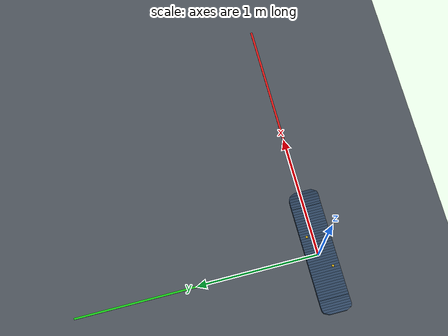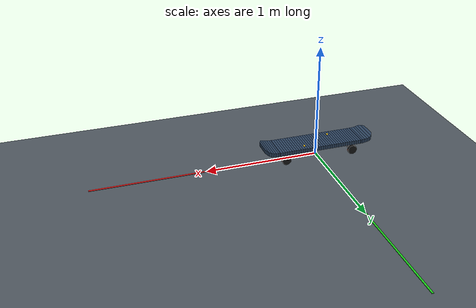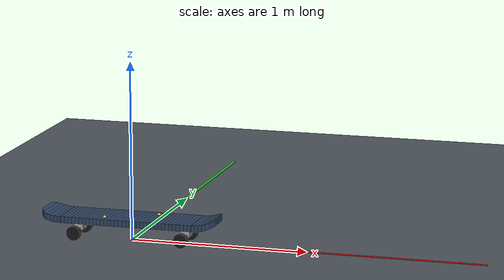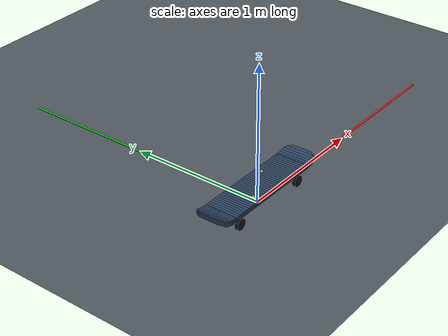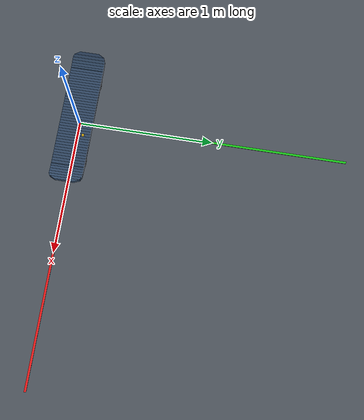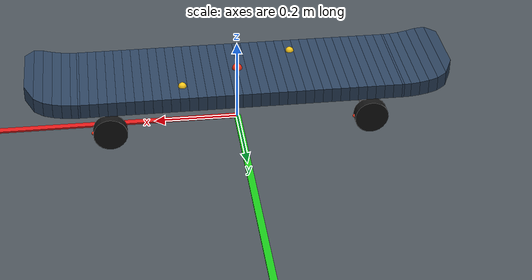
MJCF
<mujoco model="skate-sim-board-longboard-truck">
      <compiler angle="radian" coordinate="local"/>
      <option gravity="0 0 -9.81" integrator="implicitfast" timestep=".002"/>
      <visual><headlight diffuse=".8 .8 .8" ambient=".35 .35 .35"/></visual>
      <asset>
        <mesh name="deck_strip_0" vertex="-0.5 -0.0700000013 0.0105 -0.5 -0.0700000013 0.0455 -0.5 0.0700000013 0.0105 -0.5 0.0700000013 0.0455 -0.479166667 -0.110611643 0.00162172068 -0.479166667 -0.110611643 0.0366217207 -0.479166667 0.110611643 0.00162172068 -0.479166667 0.110611643 0.0366217207"/><mesh name="deck_strip_1" vertex="-0.479166667 -0.110611643 0.00162172068 -0.479166667 -0.110611643 0.0366217207 -0.479166667 0.110611643 0.00162172068 -0.479166667 0.110611643 0.0366217207 -0.458333333 -0.119300665 -0.00556867284 -0.458333333 -0.119300665 0.0294313272 -0.458333333 0.119300665 -0.00556867284 -0.458333333 0.119300665 0.0294313272"/><mesh name="deck_strip_2" vertex="-0.458333333 -0.119300665 -0.00556867284 -0.458333333 -0.119300665 0.0294313272 -0.458333333 0.119300665 -0.00556867284 -0.458333333 0.119300665 0.0294313272 -0.4375 -0.12 -0.0110711806 -0.4375 -0.12 0.0239288194 -0.4375 0.12 -0.0110711806 -0.4375 0.12 0.0239288194"/><mesh name="deck_strip_3" vertex="-0.4375 -0.12 -0.0110711806 -0.4375 -0.12 0.0239288194 -0.4375 0.12 -0.0110711806 -0.4375 0.12 0.0239288194 -0.416666667 -0.12 -0.0148858025 -0.416666667 -0.12 0.0201141975 -0.416666667 0.12 -0.0148858025 -0.416666667 0.12 0.0201141975"/><mesh name="deck_strip_4" vertex="-0.416666667 -0.12 -0.0148858025 -0.416666667 -0.12 0.0201141975 -0.416666667 0.12 -0.0148858025 -0.416666667 0.12 0.0201141975 -0.395833333 -0.12 -0.0170125386 -0.395833333 -0.12 0.0179874614 -0.395833333 0.12 -0.0170125386 -0.395833333 0.12 0.0179874614"/><mesh name="deck_strip_5" vertex="-0.395833333 -0.12 -0.0170125386 -0.395833333 -0.12 0.0179874614 -0.395833333 0.12 -0.0170125386 -0.395833333 0.12 0.0179874614 -0.38 -0.12 -0.0175 -0.38 -0.12 0.0175 -0.38 0.12 -0.0175 -0.38 0.12 0.0175"/><mesh name="deck_strip_6" vertex="-0.38 -0.12 -0.0175 -0.38 -0.12 0.0175 -0.38 0.12 -0.0175 -0.38 0.12 0.0175 -0.375 -0.12 -0.0175 -0.375 -0.12 0.0175 -0.375 0.12 -0.0175 -0.375 0.12 0.0175"/><mesh name="deck_strip_7" vertex="-0.375 -0.12 -0.0175 -0.375 -0.12 0.0175 -0.375 0.12 -0.0175 -0.375 0.12 0.0175 -0.354166667 -0.12 -0.0175 -0.354166667 -0.12 0.0175 -0.354166667 0.12 -0.0175 -0.354166667 0.12 0.0175"/><mesh name="deck_strip_8" vertex="-0.354166667 -0.12 -0.0175 -0.354166667 -0.12 0.0175 -0.354166667 0.12 -0.0175 -0.354166667 0.12 0.0175 -0.333333333 -0.12 -0.0175 -0.333333333 -0.12 0.0175 -0.333333333 0.12 -0.0175 -0.333333333 0.12 0.0175"/><mesh name="deck_strip_9" vertex="-0.333333333 -0.12 -0.0175 -0.333333333 -0.12 0.0175 -0.333333333 0.12 -0.0175 -0.333333333 0.12 0.0175 -0.3125 -0.12 -0.0175 -0.3125 -0.12 0.0175 -0.3125 0.12 -0.0175 -0.3125 0.12 0.0175"/><mesh name="deck_strip_10" vertex="-0.3125 -0.12 -0.0175 -0.3125 -0.12 0.0175 -0.3125 0.12 -0.0175 -0.3125 0.12 0.0175 -0.291666667 -0.12 -0.0175 -0.291666667 -0.12 0.0175 -0.291666667 0.12 -0.0175 -0.291666667 0.12 0.0175"/><mesh name="deck_strip_11" vertex="-0.291666667 -0.12 -0.0175 -0.291666667 -0.12 0.0175 -0.291666667 0.12 -0.0175 -0.291666667 0.12 0.0175 -0.270833333 -0.12 -0.0175 -0.270833333 -0.12 0.0175 -0.270833333 0.12 -0.0175 -0.270833333 0.12 0.0175"/><mesh name="deck_strip_12" vertex="-0.270833333 -0.12 -0.0175 -0.270833333 -0.12 0.0175 -0.270833333 0.12 -0.0175 -0.270833333 0.12 0.0175 -0.25 -0.12 -0.0175 -0.25 -0.12 0.0175 -0.25 0.12 -0.0175 -0.25 0.12 0.0175"/><mesh name="deck_strip_13" vertex="-0.25 -0.12 -0.0175 -0.25 -0.12 0.0175 -0.25 0.12 -0.0175 -0.25 0.12 0.0175 -0.229166667 -0.12 -0.0175 -0.229166667 -0.12 0.0175 -0.229166667 0.12 -0.0175 -0.229166667 0.12 0.0175"/><mesh name="deck_strip_14" vertex="-0.229166667 -0.12 -0.0175 -0.229166667 -0.12 0.0175 -0.229166667 0.12 -0.0175 -0.229166667 0.12 0.0175 -0.208333333 -0.12 -0.0175 -0.208333333 -0.12 0.0175 -0.208333333 0.12 -0.0175 -0.208333333 0.12 0.0175"/><mesh name="deck_strip_15" vertex="-0.208333333 -0.12 -0.0175 -0.208333333 -0.12 0.0175 -0.208333333 0.12 -0.0175 -0.208333333 0.12 0.0175 -0.1875 -0.12 -0.0175 -0.1875 -0.12 0.0175 -0.1875 0.12 -0.0175 -0.1875 0.12 0.0175"/><mesh name="deck_strip_16" vertex="-0.1875 -0.12 -0.0175 -0.1875 -0.12 0.0175 -0.1875 0.12 -0.0175 -0.1875 0.12 0.0175 -0.166666667 -0.12 -0.0175 -0.166666667 -0.12 0.0175 -0.166666667 0.12 -0.0175 -0.166666667 0.12 0.0175"/><mesh name="deck_strip_17" vertex="-0.166666667 -0.12 -0.0175 -0.166666667 -0.12 0.0175 -0.166666667 0.12 -0.0175 -0.166666667 0.12 0.0175 -0.145833333 -0.12 -0.0175 -0.145833333 -0.12 0.0175 -0.145833333 0.12 -0.0175 -0.145833333 0.12 0.0175"/><mesh name="deck_strip_18" vertex="-0.145833333 -0.12 -0.0175 -0.145833333 -0.12 0.0175 -0.145833333 0.12 -0.0175 -0.145833333 0.12 0.0175 -0.125 -0.12 -0.0175 -0.125 -0.12 0.0175 -0.125 0.12 -0.0175 -0.125 0.12 0.0175"/><mesh name="deck_strip_19" vertex="-0.125 -0.12 -0.0175 -0.125 -0.12 0.0175 -0.125 0.12 -0.0175 -0.125 0.12 0.0175 -0.104166667 -0.12 -0.0175 -0.104166667 -0.12 0.0175 -0.104166667 0.12 -0.0175 -0.104166667 0.12 0.0175"/><mesh name="deck_strip_20" vertex="-0.104166667 -0.12 -0.0175 -0.104166667 -0.12 0.0175 -0.104166667 0.12 -0.0175 -0.104166667 0.12 0.0175 -0.0833333333 -0.12 -0.0175 -0.0833333333 -0.12 0.0175 -0.0833333333 0.12 -0.0175 -0.0833333333 0.12 0.0175"/><mesh name="deck_strip_21" vertex="-0.0833333333 -0.12 -0.0175 -0.0833333333 -0.12 0.0175 -0.0833333333 0.12 -0.0175 -0.0833333333 0.12 0.0175 -0.0625 -0.12 -0.0175 -0.0625 -0.12 0.0175 -0.0625 0.12 -0.0175 -0.0625 0.12 0.0175"/><mesh name="deck_strip_22" vertex="-0.0625 -0.12 -0.0175 -0.0625 -0.12 0.0175 -0.0625 0.12 -0.0175 -0.0625 0.12 0.0175 -0.0416666667 -0.12 -0.0175 -0.0416666667 -0.12 0.0175 -0.0416666667 0.12 -0.0175 -0.0416666667 0.12 0.0175"/><mesh name="deck_strip_23" vertex="-0.0416666667 -0.12 -0.0175 -0.0416666667 -0.12 0.0175 -0.0416666667 0.12 -0.0175 -0.0416666667 0.12 0.0175 -0.0208333333 -0.12 -0.0175 -0.0208333333 -0.12 0.0175 -0.0208333333 0.12 -0.0175 -0.0208333333 0.12 0.0175"/><mesh name="deck_strip_24" vertex="-0.0208333333 -0.12 -0.0175 -0.0208333333 -0.12 0.0175 -0.0208333333 0.12 -0.0175 -0.0208333333 0.12 0.0175 0 -0.12 -0.0175 0 -0.12 0.0175 0 0.12 -0.0175 0 0.12 0.0175"/><mesh name="deck_strip_25" vertex="0 -0.12 -0.0175 0 -0.12 0.0175 0 0.12 -0.0175 0 0.12 0.0175 0.0208333333 -0.12 -0.0175 0.0208333333 -0.12 0.0175 0.0208333333 0.12 -0.0175 0.0208333333 0.12 0.0175"/><mesh name="deck_strip_26" vertex="0.0208333333 -0.12 -0.0175 0.0208333333 -0.12 0.0175 0.0208333333 0.12 -0.0175 0.0208333333 0.12 0.0175 0.0416666667 -0.12 -0.0175 0.0416666667 -0.12 0.0175 0.0416666667 0.12 -0.0175 0.0416666667 0.12 0.0175"/><mesh name="deck_strip_27" vertex="0.0416666667 -0.12 -0.0175 0.0416666667 -0.12 0.0175 0.0416666667 0.12 -0.0175 0.0416666667 0.12 0.0175 0.0625 -0.12 -0.0175 0.0625 -0.12 0.0175 0.0625 0.12 -0.0175 0.0625 0.12 0.0175"/><mesh name="deck_strip_28" vertex="0.0625 -0.12 -0.0175 0.0625 -0.12 0.0175 0.0625 0.12 -0.0175 0.0625 0.12 0.0175 0.0833333333 -0.12 -0.0175 0.0833333333 -0.12 0.0175 0.0833333333 0.12 -0.0175 0.0833333333 0.12 0.0175"/><mesh name="deck_strip_29" vertex="0.0833333333 -0.12 -0.0175 0.0833333333 -0.12 0.0175 0.0833333333 0.12 -0.0175 0.0833333333 0.12 0.0175 0.104166667 -0.12 -0.0175 0.104166667 -0.12 0.0175 0.104166667 0.12 -0.0175 0.104166667 0.12 0.0175"/><mesh name="deck_strip_30" vertex="0.104166667 -0.12 -0.0175 0.104166667 -0.12 0.0175 0.104166667 0.12 -0.0175 0.104166667 0.12 0.0175 0.125 -0.12 -0.0175 0.125 -0.12 0.0175 0.125 0.12 -0.0175 0.125 0.12 0.0175"/><mesh name="deck_strip_31" vertex="0.125 -0.12 -0.0175 0.125 -0.12 0.0175 0.125 0.12 -0.0175 0.125 0.12 0.0175 0.145833333 -0.12 -0.0175 0.145833333 -0.12 0.0175 0.145833333 0.12 -0.0175 0.145833333 0.12 0.0175"/><mesh name="deck_strip_32" vertex="0.145833333 -0.12 -0.0175 0.145833333 -0.12 0.0175 0.145833333 0.12 -0.0175 0.145833333 0.12 0.0175 0.166666667 -0.12 -0.0175 0.166666667 -0.12 0.0175 0.166666667 0.12 -0.0175 0.166666667 0.12 0.0175"/><mesh name="deck_strip_33" vertex="0.166666667 -0.12 -0.0175 0.166666667 -0.12 0.0175 0.166666667 0.12 -0.0175 0.166666667 0.12 0.0175 0.1875 -0.12 -0.0175 0.1875 -0.12 0.0175 0.1875 0.12 -0.0175 0.1875 0.12 0.0175"/><mesh name="deck_strip_34" vertex="0.1875 -0.12 -0.0175 0.1875 -0.12 0.0175 0.1875 0.12 -0.0175 0.1875 0.12 0.0175 0.208333333 -0.12 -0.0175 0.208333333 -0.12 0.0175 0.208333333 0.12 -0.0175 0.208333333 0.12 0.0175"/><mesh name="deck_strip_35" vertex="0.208333333 -0.12 -0.0175 0.208333333 -0.12 0.0175 0.208333333 0.12 -0.0175 0.208333333 0.12 0.0175 0.229166667 -0.12 -0.0175 0.229166667 -0.12 0.0175 0.229166667 0.12 -0.0175 0.229166667 0.12 0.0175"/><mesh name="deck_strip_36" vertex="0.229166667 -0.12 -0.0175 0.229166667 -0.12 0.0175 0.229166667 0.12 -0.0175 0.229166667 0.12 0.0175 0.25 -0.12 -0.0175 0.25 -0.12 0.0175 0.25 0.12 -0.0175 0.25 0.12 0.0175"/><mesh name="deck_strip_37" vertex="0.25 -0.12 -0.0175 0.25 -0.12 0.0175 0.25 0.12 -0.0175 0.25 0.12 0.0175 0.270833333 -0.12 -0.0175 0.270833333 -0.12 0.0175 0.270833333 0.12 -0.0175 0.270833333 0.12 0.0175"/><mesh name="deck_strip_38" vertex="0.270833333 -0.12 -0.0175 0.270833333 -0.12 0.0175 0.270833333 0.12 -0.0175 0.270833333 0.12 0.0175 0.291666667 -0.12 -0.0175 0.291666667 -0.12 0.0175 0.291666667 0.12 -0.0175 0.291666667 0.12 0.0175"/><mesh name="deck_strip_39" vertex="0.291666667 -0.12 -0.0175 0.291666667 -0.12 0.0175 0.291666667 0.12 -0.0175 0.291666667 0.12 0.0175 0.3125 -0.12 -0.0175 0.3125 -0.12 0.0175 0.3125 0.12 -0.0175 0.3125 0.12 0.0175"/><mesh name="deck_strip_40" vertex="0.3125 -0.12 -0.0175 0.3125 -0.12 0.0175 0.3125 0.12 -0.0175 0.3125 0.12 0.0175 0.333333333 -0.12 -0.0175 0.333333333 -0.12 0.0175 0.333333333 0.12 -0.0175 0.333333333 0.12 0.0175"/><mesh name="deck_strip_41" vertex="0.333333333 -0.12 -0.0175 0.333333333 -0.12 0.0175 0.333333333 0.12 -0.0175 0.333333333 0.12 0.0175 0.354166667 -0.12 -0.0175 0.354166667 -0.12 0.0175 0.354166667 0.12 -0.0175 0.354166667 0.12 0.0175"/><mesh name="deck_strip_42" vertex="0.354166667 -0.12 -0.0175 0.354166667 -0.12 0.0175 0.354166667 0.12 -0.0175 0.354166667 0.12 0.0175 0.375 -0.12 -0.0175 0.375 -0.12 0.0175 0.375 0.12 -0.0175 0.375 0.12 0.0175"/><mesh name="deck_strip_43" vertex="0.375 -0.12 -0.0175 0.375 -0.12 0.0175 0.375 0.12 -0.0175 0.375 0.12 0.0175 0.38 -0.12 -0.0175 0.38 -0.12 0.0175 0.38 0.12 -0.0175 0.38 0.12 0.0175"/><mesh name="deck_strip_44" vertex="0.38 -0.12 -0.0175 0.38 -0.12 0.0175 0.38 0.12 -0.0175 0.38 0.12 0.0175 0.395833333 -0.12 -0.0170125386 0.395833333 -0.12 0.0179874614 0.395833333 0.12 -0.0170125386 0.395833333 0.12 0.0179874614"/><mesh name="deck_strip_45" vertex="0.395833333 -0.12 -0.0170125386 0.395833333 -0.12 0.0179874614 0.395833333 0.12 -0.0170125386 0.395833333 0.12 0.0179874614 0.416666667 -0.12 -0.0148858025 0.416666667 -0.12 0.0201141975 0.416666667 0.12 -0.0148858025 0.416666667 0.12 0.0201141975"/><mesh name="deck_strip_46" vertex="0.416666667 -0.12 -0.0148858025 0.416666667 -0.12 0.0201141975 0.416666667 0.12 -0.0148858025 0.416666667 0.12 0.0201141975 0.4375 -0.12 -0.0110711806 0.4375 -0.12 0.0239288194 0.4375 0.12 -0.0110711806 0.4375 0.12 0.0239288194"/><mesh name="deck_strip_47" vertex="0.4375 -0.12 -0.0110711806 0.4375 -0.12 0.0239288194 0.4375 0.12 -0.0110711806 0.4375 0.12 0.0239288194 0.458333333 -0.119300665 -0.00556867284 0.458333333 -0.119300665 0.0294313272 0.458333333 0.119300665 -0.00556867284 0.458333333 0.119300665 0.0294313272"/><mesh name="deck_strip_48" vertex="0.458333333 -0.119300665 -0.00556867284 0.458333333 -0.119300665 0.0294313272 0.458333333 0.119300665 -0.00556867284 0.458333333 0.119300665 0.0294313272 0.479166667 -0.110611643 0.00162172068 0.479166667 -0.110611643 0.0366217207 0.479166667 0.110611643 0.00162172068 0.479166667 0.110611643 0.0366217207"/><mesh name="deck_strip_49" vertex="0.479166667 -0.110611643 0.00162172068 0.479166667 -0.110611643 0.0366217207 0.479166667 0.110611643 0.00162172068 0.479166667 0.110611643 0.0366217207 0.5 -0.0700000013 0.0105 0.5 -0.0700000013 0.0455 0.5 0.0700000013 0.0105 0.5 0.0700000013 0.0455"/>
        <texture name="grid" type="2d" builtin="checker" width="256" height="256" rgb1=".2 .23 .26" rgb2=".4 .43 .46"/>
        <material name="floor" texture="grid" texrepeat="10 10" texuniform="true"/>
        <mesh name="ramp" vertex="-.35 -.55 0 .35 -.55 0 -.35 .55 0 .35 .55 0 .35 -.55 .24 .35 .55 .24"/>
      </asset>
      <worldbody>
        <light name="key" pos="0 -2 4" directional="true"/>
        <geom name="ground" type="plane" size="5 5 .1" material="floor"/>
        <geom name="axis_x" type="box" pos="1 0 .002" size="1 .008 .002" rgba=".9 .1 .1 1" contype="0" conaffinity="0"/>
        <geom name="axis_y" type="box" pos="0 1 .002" size=".008 1 .002" rgba=".1 .8 .1 1" contype="0" conaffinity="0"/>

        <body name="deck" pos="0 0 0.117500" euler="0 0 0">
          <freejoint name="deck_free"/>
          <geom name="deck_collision" type="box" size="0.380000 0.120000 0.017500" mass="0" contype="0" conaffinity="0" rgba="0 0 0 0" group="5"/>
          <geom name="deck_strip_0" type="mesh" mesh="deck_strip_0" mass="0.0476143791515" rgba=".18 .27 .38 1"/><geom name="deck_strip_1" type="mesh" mesh="deck_strip_1" mass="0.0606114397443" rgba=".18 .27 .38 1"/><geom name="deck_strip_2" type="mesh" mesh="deck_strip_2" mass="0.0630864783074" rgba=".18 .27 .38 1"/><geom name="deck_strip_3" type="mesh" mesh="deck_strip_3" mass="0.0632708429903" rgba=".18 .27 .38 1"/><geom name="deck_strip_4" type="mesh" mesh="deck_strip_4" mass="0.0632708429903" rgba=".18 .27 .38 1"/><geom name="deck_strip_5" type="mesh" mesh="deck_strip_5" mass="0.0480858406726" rgba=".18 .27 .38 1"/><geom name="deck_strip_6" type="mesh" mesh="deck_strip_6" mass="0.0151850023177" rgba=".18 .27 .38 1"/><geom name="deck_strip_7" type="mesh" mesh="deck_strip_7" mass="0.0632708429903" rgba=".18 .27 .38 1"/><geom name="deck_strip_8" type="mesh" mesh="deck_strip_8" mass="0.0632708429903" rgba=".18 .27 .38 1"/><geom name="deck_strip_9" type="mesh" mesh="deck_strip_9" mass="0.0632708429903" rgba=".18 .27 .38 1"/><geom name="deck_strip_10" type="mesh" mesh="deck_strip_10" mass="0.0632708429903" rgba=".18 .27 .38 1"/><geom name="deck_strip_11" type="mesh" mesh="deck_strip_11" mass="0.0632708429903" rgba=".18 .27 .38 1"/><geom name="deck_strip_12" type="mesh" mesh="deck_strip_12" mass="0.0632708429903" rgba=".18 .27 .38 1"/><geom name="deck_strip_13" type="mesh" mesh="deck_strip_13" mass="0.0632708429903" rgba=".18 .27 .38 1"/><geom name="deck_strip_14" type="mesh" mesh="deck_strip_14" mass="0.0632708429903" rgba=".18 .27 .38 1"/><geom name="deck_strip_15" type="mesh" mesh="deck_strip_15" mass="0.0632708429903" rgba=".18 .27 .38 1"/><geom name="deck_strip_16" type="mesh" mesh="deck_strip_16" mass="0.0632708429903" rgba=".18 .27 .38 1"/><geom name="deck_strip_17" type="mesh" mesh="deck_strip_17" mass="0.0632708429903" rgba=".18 .27 .38 1"/><geom name="deck_strip_18" type="mesh" mesh="deck_strip_18" mass="0.0632708429903" rgba=".18 .27 .38 1"/><geom name="deck_strip_19" type="mesh" mesh="deck_strip_19" mass="0.0632708429903" rgba=".18 .27 .38 1"/><geom name="deck_strip_20" type="mesh" mesh="deck_strip_20" mass="0.0632708429903" rgba=".18 .27 .38 1"/><geom name="deck_strip_21" type="mesh" mesh="deck_strip_21" mass="0.0632708429903" rgba=".18 .27 .38 1"/><geom name="deck_strip_22" type="mesh" mesh="deck_strip_22" mass="0.0632708429903" rgba=".18 .27 .38 1"/><geom name="deck_strip_23" type="mesh" mesh="deck_strip_23" mass="0.0632708429903" rgba=".18 .27 .38 1"/><geom name="deck_strip_24" type="mesh" mesh="deck_strip_24" mass="0.0632708429903" rgba=".18 .27 .38 1"/><geom name="deck_strip_25" type="mesh" mesh="deck_strip_25" mass="0.0632708429903" rgba=".18 .27 .38 1"/><geom name="deck_strip_26" type="mesh" mesh="deck_strip_26" mass="0.0632708429903" rgba=".18 .27 .38 1"/><geom name="deck_strip_27" type="mesh" mesh="deck_strip_27" mass="0.0632708429903" rgba=".18 .27 .38 1"/><geom name="deck_strip_28" type="mesh" mesh="deck_strip_28" mass="0.0632708429903" rgba=".18 .27 .38 1"/><geom name="deck_strip_29" type="mesh" mesh="deck_strip_29" mass="0.0632708429903" rgba=".18 .27 .38 1"/><geom name="deck_strip_30" type="mesh" mesh="deck_strip_30" mass="0.0632708429903" rgba=".18 .27 .38 1"/><geom name="deck_strip_31" type="mesh" mesh="deck_strip_31" mass="0.0632708429903" rgba=".18 .27 .38 1"/><geom name="deck_strip_32" type="mesh" mesh="deck_strip_32" mass="0.0632708429903" rgba=".18 .27 .38 1"/><geom name="deck_strip_33" type="mesh" mesh="deck_strip_33" mass="0.0632708429903" rgba=".18 .27 .38 1"/><geom name="deck_strip_34" type="mesh" mesh="deck_strip_34" mass="0.0632708429903" rgba=".18 .27 .38 1"/><geom name="deck_strip_35" type="mesh" mesh="deck_strip_35" mass="0.0632708429903" rgba=".18 .27 .38 1"/><geom name="deck_strip_36" type="mesh" mesh="deck_strip_36" mass="0.0632708429903" rgba=".18 .27 .38 1"/><geom name="deck_strip_37" type="mesh" mesh="deck_strip_37" mass="0.0632708429903" rgba=".18 .27 .38 1"/><geom name="deck_strip_38" type="mesh" mesh="deck_strip_38" mass="0.0632708429903" rgba=".18 .27 .38 1"/><geom name="deck_strip_39" type="mesh" mesh="deck_strip_39" mass="0.0632708429903" rgba=".18 .27 .38 1"/><geom name="deck_strip_40" type="mesh" mesh="deck_strip_40" mass="0.0632708429903" rgba=".18 .27 .38 1"/><geom name="deck_strip_41" type="mesh" mesh="deck_strip_41" mass="0.0632708429903" rgba=".18 .27 .38 1"/><geom name="deck_strip_42" type="mesh" mesh="deck_strip_42" mass="0.0632708429903" rgba=".18 .27 .38 1"/><geom name="deck_strip_43" type="mesh" mesh="deck_strip_43" mass="0.0151850023177" rgba=".18 .27 .38 1"/><geom name="deck_strip_44" type="mesh" mesh="deck_strip_44" mass="0.0480858406726" rgba=".18 .27 .38 1"/><geom name="deck_strip_45" type="mesh" mesh="deck_strip_45" mass="0.0632708429903" rgba=".18 .27 .38 1"/><geom name="deck_strip_46" type="mesh" mesh="deck_strip_46" mass="0.0632708429903" rgba=".18 .27 .38 1"/><geom name="deck_strip_47" type="mesh" mesh="deck_strip_47" mass="0.0630864783074" rgba=".18 .27 .38 1"/><geom name="deck_strip_48" type="mesh" mesh="deck_strip_48" mass="0.0606114397443" rgba=".18 .27 .38 1"/><geom name="deck_strip_49" type="mesh" mesh="deck_strip_49" mass="0.0476143791515" rgba=".18 .27 .38 1"/>
          <site name="deck_top" pos="0 0 0.017500" size=".012" rgba="1 .2 .1 1"/>
          <site name="left_foot_anchor" pos="0.136400 0.067200 0.017500" size=".01" rgba="1 .8 .1 1"/>
          <site name="right_foot_anchor" pos="-0.136400 -0.067200 0.017500" size=".01" rgba="1 .8 .1 1"/>
          <body name="front_truck" pos="0.310000 0 -0.017500">
          <joint name="front_truck_tilt" type="hinge" axis="0.7071068967259818 0 0.7071066656470943" range="-0.35 0.35" stiffness="2.4" damping="0.1"/>
          <geom name="front_truck_collision" type="box" pos="0 0 -.030" size=".025 .012 .030" mass="0.168000" rgba=".65 .65 .68 1"/>
          <geom name="front_axle_collision" type="box" pos="0 0 -.060" size=".012 0.082500 .010" mass="0.112000" rgba=".65 .65 .68 1"/>
          <site name="front_truck_pivot" size=".005" rgba="1 .3 1 1"/>
           <site name="front_truck_axis" type="capsule" fromto="0 0 0 0.06363962070533837 0 0.06363959990823849" size=".002" rgba="1 .3 1 1" group="3"/>
          <body name="front_left" pos="0 0.095000 -0.060000">
      <joint name="front_left_spin" type="hinge" axis="0 1 0" damping=".02"/>
      <geom name="front_left_collision" type="cylinder" fromto="0 -0.012500 0 0 0.012500 0" size="0.040000" mass="0.110000" rgba=".08 .08 .08 1"/>
      <site name="front_left_axle" pos="0 0 0" size=".006" rgba="1 1 0 1"/>
      <site name="front_left_axis" type="capsule" fromto="0 -.04 0 0 .04 0" size=".002" rgba="1 1 0 1" group="3"/>
      <site name="front_left_marker" pos="0.040000 0 0" size=".004" rgba="1 .2 .1 1"/>
    </body><body name="front_right" pos="0 -0.095000 -0.060000">
      <joint name="front_right_spin" type="hinge" axis="0 1 0" damping=".02"/>
      <geom name="front_right_collision" type="cylinder" fromto="0 -0.012500 0 0 0.012500 0" size="0.040000" mass="0.110000" rgba=".08 .08 .08 1"/>
      <site name="front_right_axle" pos="0 0 0" size=".006" rgba="1 1 0 1"/>
      <site name="front_right_axis" type="capsule" fromto="0 -.04 0 0 .04 0" size=".002" rgba="1 1 0 1" group="3"/>
      <site name="front_right_marker" pos="0.040000 0 0" size=".004" rgba="1 .2 .1 1"/>
    </body>
        </body><body name="rear_truck" pos="-0.310000 0 -0.017500">
          <joint name="rear_truck_tilt" type="hinge" axis="0.7071068967259818 0 -0.7071066656470943" range="-0.35 0.35" stiffness="2.4" damping="0.1"/>
          <geom name="rear_truck_collision" type="box" pos="0 0 -.030" size=".025 .012 .030" mass="0.168000" rgba=".65 .65 .68 1"/>
          <geom name="rear_axle_collision" type="box" pos="0 0 -.060" size=".012 0.082500 .010" mass="0.112000" rgba=".65 .65 .68 1"/>
          <site name="rear_truck_pivot" size=".005" rgba="1 .3 1 1"/>
           <site name="rear_truck_axis" type="capsule" fromto="0 0 0 0.06363962070533837 0 -0.06363959990823849" size=".002" rgba="1 .3 1 1" group="3"/>
          <body name="rear_left" pos="0 0.095000 -0.060000">
      <joint name="rear_left_spin" type="hinge" axis="0 1 0" damping=".02"/>
      <geom name="rear_left_collision" type="cylinder" fromto="0 -0.012500 0 0 0.012500 0" size="0.040000" mass="0.110000" rgba=".08 .08 .08 1"/>
      <site name="rear_left_axle" pos="0 0 0" size=".006" rgba="1 1 0 1"/>
      <site name="rear_left_axis" type="capsule" fromto="0 -.04 0 0 .04 0" size=".002" rgba="1 1 0 1" group="3"/>
      <site name="rear_left_marker" pos="0.040000 0 0" size=".004" rgba="1 .2 .1 1"/>
    </body><body name="rear_right" pos="0 -0.095000 -0.060000">
      <joint name="rear_right_spin" type="hinge" axis="0 1 0" damping=".02"/>
      <geom name="rear_right_collision" type="cylinder" fromto="0 -0.012500 0 0 0.012500 0" size="0.040000" mass="0.110000" rgba=".08 .08 .08 1"/>
      <site name="rear_right_axle" pos="0 0 0" size=".006" rgba="1 1 0 1"/>
      <site name="rear_right_axis" type="capsule" fromto="0 -.04 0 0 .04 0" size=".002" rgba="1 1 0 1" group="3"/>
      <site name="rear_right_marker" pos="0.040000 0 0" size=".004" rgba="1 .2 .1 1"/>
    </body>
        </body>
        </body>
      </worldbody>
    </mujoco>
